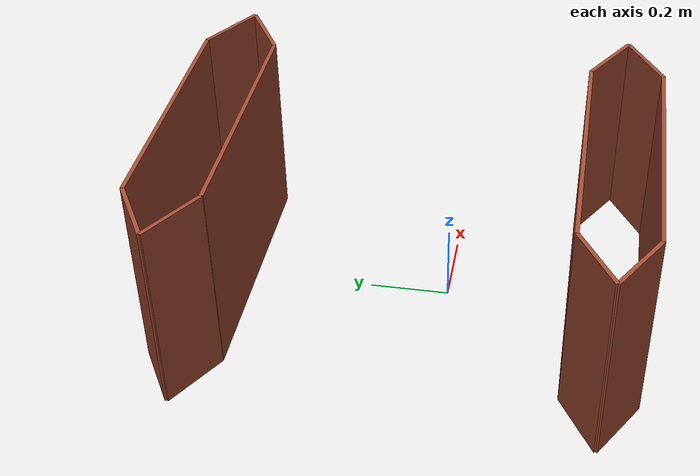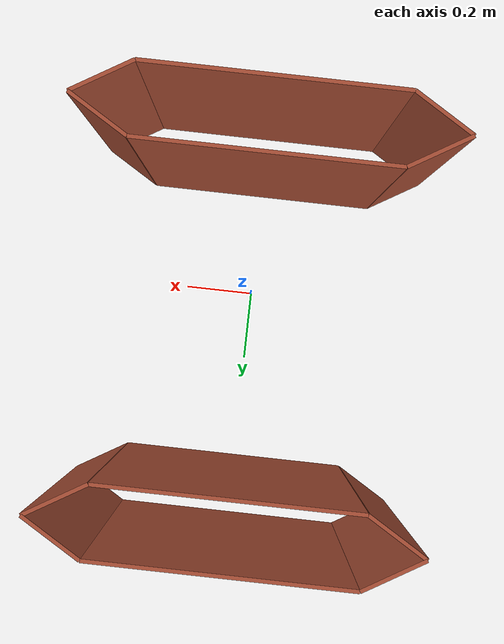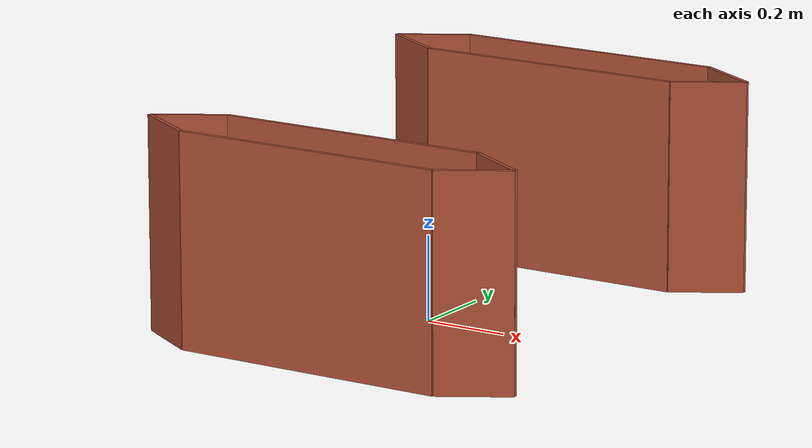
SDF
<sdf version='1.5'>
                <!-- This SDF file is for enlarging environment -->
                <model name='ros_symbol'>
                    <static>1</static>
                    <link name='symbol'>

            <collision name='obs_wall_1'>
                <pose>-0.405 0.645 0.25 0 0 0.540</pose>
                <geometry>
                    <box><size>0.175 0.01 0.5</size></box>
                </geometry>
                <max_contacts>10</max_contacts>
                <surface><bounce/><friction><ode/></friction><contact><ode/></contact></surface>
            </collision>

            <visual name='obs_wall_1'>
                <pose>-0.405 0.645 0.25 0 0 0.540</pose>
                <geometry>
                    <box><size>0.175 0.01 0.5</size></box>
                </geometry>
                <material>
                    <script>
                        <uri>file://media/materials/scripts/gazebo.material</uri>
                        <name>Gazebo/Bricks</name>
                    </script>
                </material>
            </visual>

            <collision name='obs_wall_2'>
                <pose>0.0 0.69 0.25 0 0 0.000</pose>
                <geometry>
                    <box><size>0.660 0.01 0.5</size></box>
                </geometry>
                <max_contacts>10</max_contacts>
                <surface><bounce/><friction><ode/></friction><contact><ode/></contact></surface>
            </collision>

            <visual name='obs_wall_2'>
                <pose>0.0 0.69 0.25 0 0 0.000</pose>
                <geometry>
                    <box><size>0.660 0.01 0.5</size></box>
                </geometry>
                <material>
                    <script>
                        <uri>file://media/materials/scripts/gazebo.material</uri>
                        <name>Gazebo/Bricks</name>
                    </script>
                </material>
            </visual>

            <collision name='obs_wall_3'>
                <pose>0.405 0.645 0.25 0 0 -0.540</pose>
                <geometry>
                    <box><size>0.175 0.01 0.5</size></box>
                </geometry>
                <max_contacts>10</max_contacts>
                <surface><bounce/><friction><ode/></friction><contact><ode/></contact></surface>
            </collision>

            <visual name='obs_wall_3'>
                <pose>0.405 0.645 0.25 0 0 -0.540</pose>
                <geometry>
                    <box><size>0.175 0.01 0.5</size></box>
                </geometry>
                <material>
                    <script>
                        <uri>file://media/materials/scripts/gazebo.material</uri>
                        <name>Gazebo/Bricks</name>
                    </script>
                </material>
            </visual>

            <collision name='obs_wall_4'>
                <pose>0.405 0.5549999999999999 0.25 0 0 -2.601</pose>
                <geometry>
                    <box><size>0.175 0.01 0.5</size></box>
                </geometry>
                <max_contacts>10</max_contacts>
                <surface><bounce/><friction><ode/></friction><contact><ode/></contact></surface>
            </collision>

            <visual name='obs_wall_4'>
                <pose>0.405 0.5549999999999999 0.25 0 0 -2.601</pose>
                <geometry>
                    <box><size>0.175 0.01 0.5</size></box>
                </geometry>
                <material>
                    <script>
                        <uri>file://media/materials/scripts/gazebo.material</uri>
                        <name>Gazebo/Bricks</name>
                    </script>
                </material>
            </visual>

            <collision name='obs_wall_5'>
                <pose>0.0 0.51 0.25 0 0 3.142</pose>
                <geometry>
                    <box><size>0.660 0.01 0.5</size></box>
                </geometry>
                <max_contacts>10</max_contacts>
                <surface><bounce/><friction><ode/></friction><contact><ode/></contact></surface>
            </collision>

            <visual name='obs_wall_5'>
                <pose>0.0 0.51 0.25 0 0 3.142</pose>
                <geometry>
                    <box><size>0.660 0.01 0.5</size></box>
                </geometry>
                <material>
                    <script>
                        <uri>file://media/materials/scripts/gazebo.material</uri>
                        <name>Gazebo/Bricks</name>
                    </script>
                </material>
            </visual>

            <collision name='obs_wall_6'>
                <pose>-0.405 0.5549999999999999 0.25 0 0 2.601</pose>
                <geometry>
                    <box><size>0.175 0.01 0.5</size></box>
                </geometry>
                <max_contacts>10</max_contacts>
                <surface><bounce/><friction><ode/></friction><contact><ode/></contact></surface>
            </collision>

            <visual name='obs_wall_6'>
                <pose>-0.405 0.5549999999999999 0.25 0 0 2.601</pose>
                <geometry>
                    <box><size>0.175 0.01 0.5</size></box>
                </geometry>
                <material>
                    <script>
                        <uri>file://media/materials/scripts/gazebo.material</uri>
                        <name>Gazebo/Bricks</name>
                    </script>
                </material>
            </visual>

            <collision name='obs_wall_7'>
                <pose>-0.405 -0.355 0.25 0 0 0.540</pose>
                <geometry>
                    <box><size>0.175 0.01 0.5</size></box>
                </geometry>
                <max_contacts>10</max_contacts>
                <surface><bounce/><friction><ode/></friction><contact><ode/></contact></surface>
            </collision>

            <visual name='obs_wall_7'>
                <pose>-0.405 -0.355 0.25 0 0 0.540</pose>
                <geometry>
                    <box><size>0.175 0.01 0.5</size></box>
                </geometry>
                <material>
                    <script>
                        <uri>file://media/materials/scripts/gazebo.material</uri>
                        <name>Gazebo/Bricks</name>
                    </script>
                </material>
            </visual>

            <collision name='obs_wall_8'>
                <pose>0.0 -0.31 0.25 0 0 0.000</pose>
                <geometry>
                    <box><size>0.660 0.01 0.5</size></box>
                </geometry>
                <max_contacts>10</max_contacts>
                <surface><bounce/><friction><ode/></friction><contact><ode/></contact></surface>
            </collision>

            <visual name='obs_wall_8'>
                <pose>0.0 -0.31 0.25 0 0 0.000</pose>
                <geometry>
                    <box><size>0.660 0.01 0.5</size></box>
                </geometry>
                <material>
                    <script>
                        <uri>file://media/materials/scripts/gazebo.material</uri>
                        <name>Gazebo/Bricks</name>
                    </script>
                </material>
            </visual>

            <collision name='obs_wall_9'>
                <pose>0.405 -0.355 0.25 0 0 -0.540</pose>
                <geometry>
                    <box><size>0.175 0.01 0.5</size></box>
                </geometry>
                <max_contacts>10</max_contacts>
                <surface><bounce/><friction><ode/></friction><contact><ode/></contact></surface>
            </collision>

            <visual name='obs_wall_9'>
                <pose>0.405 -0.355 0.25 0 0 -0.540</pose>
                <geometry>
                    <box><size>0.175 0.01 0.5</size></box>
                </geometry>
                <material>
                    <script>
                        <uri>file://media/materials/scripts/gazebo.material</uri>
                        <name>Gazebo/Bricks</name>
                    </script>
                </material>
            </visual>

            <collision name='obs_wall_10'>
                <pose>0.405 -0.445 0.25 0 0 -2.601</pose>
                <geometry>
                    <box><size>0.175 0.01 0.5</size></box>
                </geometry>
                <max_contacts>10</max_contacts>
                <surface><bounce/><friction><ode/></friction><contact><ode/></contact></surface>
            </collision>

            <visual name='obs_wall_10'>
                <pose>0.405 -0.445 0.25 0 0 -2.601</pose>
                <geometry>
                    <box><size>0.175 0.01 0.5</size></box>
                </geometry>
                <material>
                    <script>
                        <uri>file://media/materials/scripts/gazebo.material</uri>
                        <name>Gazebo/Bricks</name>
                    </script>
                </material>
            </visual>

            <collision name='obs_wall_11'>
                <pose>0.0 -0.49 0.25 0 0 3.142</pose>
                <geometry>
                    <box><size>0.660 0.01 0.5</size></box>
                </geometry>
                <max_contacts>10</max_contacts>
                <surface><bounce/><friction><ode/></friction><contact><ode/></contact></surface>
            </collision>

            <visual name='obs_wall_11'>
                <pose>0.0 -0.49 0.25 0 0 3.142</pose>
                <geometry>
                    <box><size>0.660 0.01 0.5</size></box>
                </geometry>
                <material>
                    <script>
                        <uri>file://media/materials/scripts/gazebo.material</uri>
                        <name>Gazebo/Bricks</name>
                    </script>
                </material>
            </visual>

            <collision name='obs_wall_12'>
                <pose>-0.405 -0.445 0.25 0 0 2.601</pose>
                <geometry>
                    <box><size>0.175 0.01 0.5</size></box>
                </geometry>
                <max_contacts>10</max_contacts>
                <surface><bounce/><friction><ode/></friction><contact><ode/></contact></surface>
            </collision>

            <visual name='obs_wall_12'>
                <pose>-0.405 -0.445 0.25 0 0 2.601</pose>
                <geometry>
                    <box><size>0.175 0.01 0.5</size></box>
                </geometry>
                <material>
                    <script>
                        <uri>file://media/materials/scripts/gazebo.material</uri>
                        <name>Gazebo/Bricks</name>
                    </script>
                </material>
            </visual>

                    </link>
                </model>
            </sdf>
